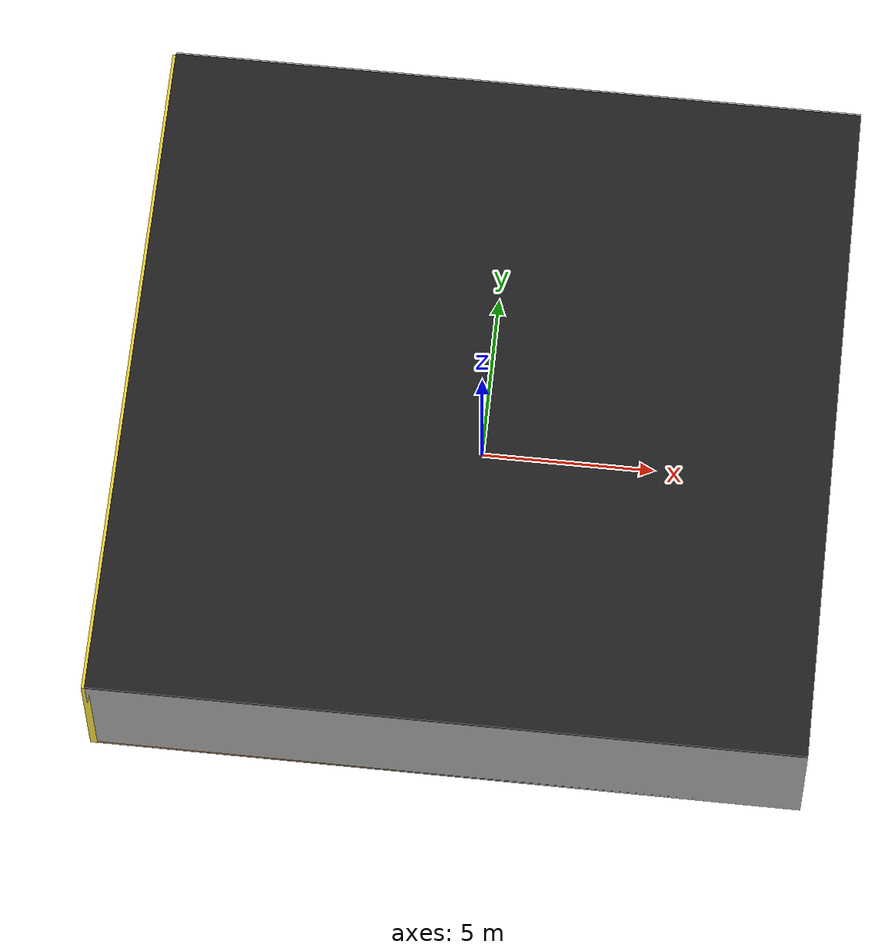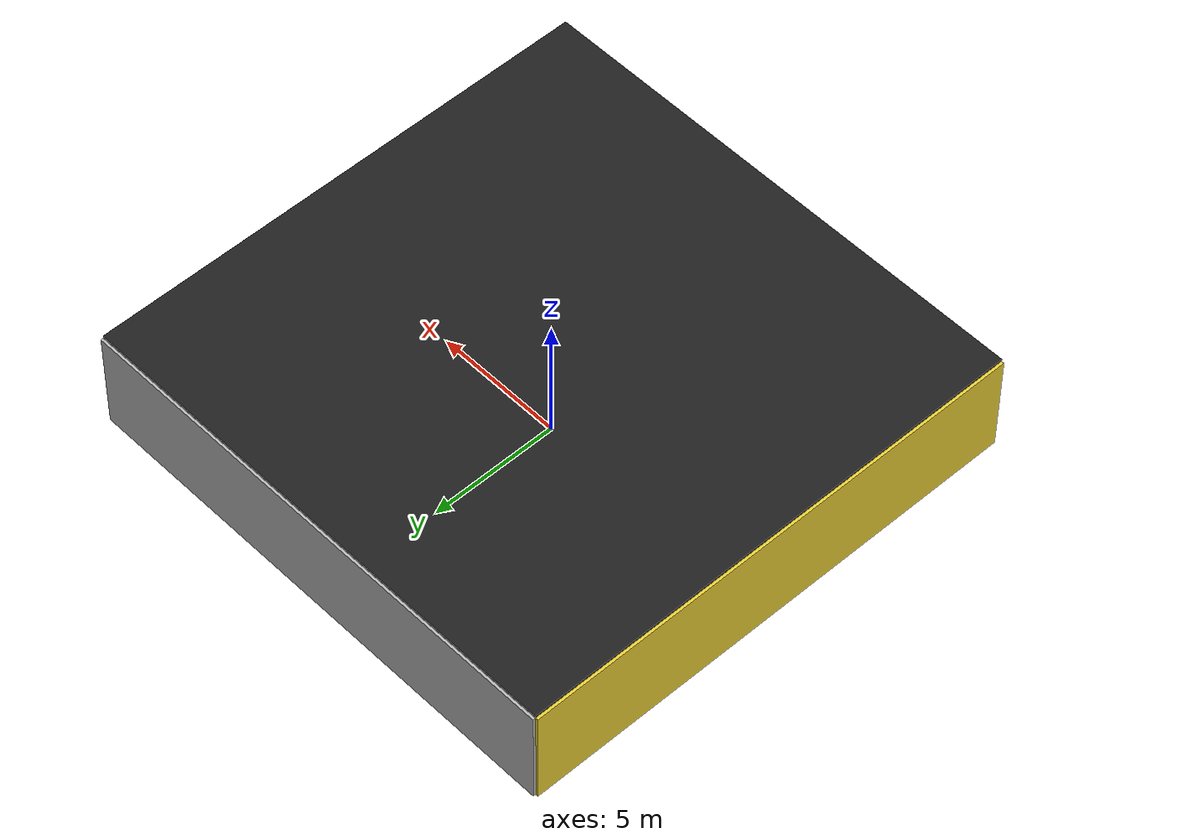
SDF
<sdf version="1.4">
 <world name="default">
  <physics type="ode">
   <max_step_size>0.001</max_step_size>
   <real_time_factor>1</real_time_factor>
   <real_time_update_rate>1000</real_time_update_rate>
   <gravity>0 0 -9.8</gravity>
  </physics>
  <scene><ambient>0.4 0.4 0.4 1</ambient><background>0.7 0.7 0.7 1</background><shadows>1</shadows></scene>
  <model name="Surrounding">
   <static>1</static>
   <link name="Ceiling">
    <collision name="Ceiling_Collision"><geometry><box><size>20 20 0.1</size></box></geometry></collision>
    <visual name="Ceiling_Visual">
     <geometry><box><size>20 20 0.1</size></box></geometry>
     <material>
      <script><uri>file://media/materials/scripts/gazebo.material</uri><name>Gazebo/Black</name></script>
     </material>
    </visual>
    <pose>0 0 4.05 0 0 0</pose>
   </link>
   <link name="Wall_South">
    <collision name="Wall_South_Collision">
     <geometry><box><size>20 0 4</size></box></geometry>
     <pose>0 0 2 0 -0 0</pose>
    </collision>
    <visual name="Wall_South_Visual">
     <pose>0 0 2 0 -0 0</pose>
     <geometry><box><size>20 0 4</size></box></geometry>
     <material>
      <script><uri>file://media/materials/scripts/gazebo.material</uri><name>Gazebo/GreyGradientSky</name></script>
     </material>
    </visual>
    <velocity_decay><linear>0</linear><angular>0</angular></velocity_decay>
    <pose>0 -10 0 0 -0 0</pose>
   </link>
   <link name="Wall_East">
    <collision name="Wall_21_Collision">
     <geometry><box><size>20 0 4</size></box></geometry>
     <pose>0 0 2 0 -0 0</pose>
    </collision>
    <visual name="Wall_21_Visual">
     <pose>0 0 2 0 -0 0</pose>
     <geometry><box><size>20 0 4</size></box></geometry>
     <material>
      <script><uri>file://media/materials/scripts/gazebo.material</uri><name>Gazebo/WoodFloor</name></script>
     </material>
    </visual>
    <velocity_decay><linear>0</linear><angular>0</angular></velocity_decay>
    <pose>10 0 0 0 -0 1.5708</pose>
   </link>
   <link name="Wall_North">
    <collision name="Wall_22_Collision">
     <geometry><box><size>20 0.2 4</size></box></geometry>
     <pose>0 0 2 0 -0 0</pose>
    </collision>
    <visual name="Wall_22_Visual">
     <pose>0 0 2 0 -0 0</pose>
     <geometry><box><size>20 0.2 4</size></box></geometry>
     <material>
      <script><uri>file://media/materials/scripts/gazebo.material</uri><name>Gazebo/LightOn</name></script>
     </material>
    </visual>
    <velocity_decay><linear>0</linear><angular>0</angular></velocity_decay>
    <pose>0 10 0 0 -0 0</pose>
   </link>
   <link name="Wall_West">
    <collision name="Wall_23_Collision">
     <geometry><box><size>20 0.2 4</size></box></geometry>
     <pose>0 0 2 0 -0 0</pose>
    </collision>
    <visual name="Wall_23_Visual">
     <pose>0 0 2 0 -0 0</pose>
     <geometry><box><size>20 0.2 4</size></box></geometry>
     <material>
      <script><uri>file://media/materials/scripts/gazebo.material</uri><name>Gazebo/ZincYellow</name></script>
     </material>
    </visual>
    <velocity_decay><linear>0</linear><angular>0</angular></velocity_decay>
    <pose>-10 0 0 0 0 -1.5708</pose>
   </link>
   <link name="Ground_link">
    <collision name="collision">
     <pose>0 0 .05 0 -0 0</pose>
     <geometry><box><size>20 20 0.1</size></box></geometry>
    </collision>
    <visual name="visual">
     <pose>0 0 .05 0 -0 0</pose>
     <geometry><box><size>20 20 0.1</size></box></geometry>
     <material>
      <script><uri>file://media/materials/scripts/gazebo.material</uri><name>Gazebo/WoodFloor</name></script>
     </material>
    </visual>
   </link>
   <static>1</static>
  </model>
  <spherical_coordinates>
   <surface_model>EARTH_WGS84</surface_model>
   <latitude_deg>0</latitude_deg>
   <longitude_deg>0</longitude_deg>
   <elevation>0</elevation>
   <heading_deg>0</heading_deg>
  </spherical_coordinates>
  <light name="lightball_0" type="diffuse">
   <diffuse>0.8 0.8 0.8 1</diffuse>
   <specular>0.2 0.2 0.2 1</specular>
   <attenuation>
    <range>100</range>
    <constant>0.7</constant>
    <linear>0.01</linear>
    <quadratic>0.001</quadratic>
   </attenuation>
   <direction>-0.5 0.1 -0.9</direction>
   <pose>-1.72548113257 6.00730472352 2.30780056289 0 0 0</pose>
  </light>
  <light name="lightball_1" type="diffuse">
   <diffuse>0.8 0.8 0.8 1</diffuse>
   <specular>0.2 0.2 0.2 1</specular>
   <attenuation>
    <range>100</range>
    <constant>0.7</constant>
    <linear>0.01</linear>
    <quadratic>0.001</quadratic>
   </attenuation>
   <direction>-0.5 0.1 -0.9</direction>
   <pose>1.40425316793 0.546187672475 0.538301630112 0 0 0</pose>
  </light>
  <light name="lightball_2" type="diffuse">
   <diffuse>0.8 0.8 0.8 1</diffuse>
   <specular>0.2 0.2 0.2 1</specular>
   <attenuation>
    <range>100</range>
    <constant>0.7</constant>
    <linear>0.01</linear>
    <quadratic>0.001</quadratic>
   </attenuation>
   <direction>-0.5 0.1 -0.9</direction>
   <pose>8.94649678988 1.32724618945 1.67921402361 0 0 0</pose>
  </light>
  <light name="lightball_3" type="diffuse">
   <diffuse>0.8 0.8 0.8 1</diffuse>
   <specular>0.2 0.2 0.2 1</specular>
   <attenuation>
    <range>100</range>
    <constant>0.7</constant>
    <linear>0.01</linear>
    <quadratic>0.001</quadratic>
   </attenuation>
   <direction>-0.5 0.1 -0.9</direction>
   <pose>2.31608089348 -5.34118591308 0.997744226114 0 0 0</pose>
  </light>
  <light name="lightball_4" type="diffuse">
   <diffuse>0.8 0.8 0.8 1</diffuse>
   <specular>0.2 0.2 0.2 1</specular>
   <attenuation>
    <range>100</range>
    <constant>0.7</constant>
    <linear>0.01</linear>
    <quadratic>0.001</quadratic>
   </attenuation>
   <direction>-0.5 0.1 -0.9</direction>
   <pose>-6.0190133108 4.19837388256 2.95433041377 0 0 0</pose>
  </light>
  <light name="lightball_5" type="diffuse">
   <diffuse>0.8 0.8 0.8 1</diffuse>
   <specular>0.2 0.2 0.2 1</specular>
   <attenuation>
    <range>100</range>
    <constant>0.7</constant>
    <linear>0.01</linear>
    <quadratic>0.001</quadratic>
   </attenuation>
   <direction>-0.5 0.1 -0.9</direction>
   <pose>2.94484974967 8.49450096261 0.675881144134 0 0 0</pose>
  </light>
  <light name="lightball_6" type="diffuse">
   <diffuse>0.8 0.8 0.8 1</diffuse>
   <specular>0.2 0.2 0.2 1</specular>
   <attenuation>
    <range>100</range>
    <constant>0.7</constant>
    <linear>0.01</linear>
    <quadratic>0.001</quadratic>
   </attenuation>
   <direction>-0.5 0.1 -0.9</direction>
   <pose>7.51215887523 0.0157800231909 2.99654937363 0 0 0</pose>
  </light>
  <light name="lightball_7" type="diffuse">
   <diffuse>0.8 0.8 0.8 1</diffuse>
   <specular>0.2 0.2 0.2 1</specular>
   <attenuation>
    <range>100</range>
    <constant>0.7</constant>
    <linear>0.01</linear>
    <quadratic>0.001</quadratic>
   </attenuation>
   <direction>-0.5 0.1 -0.9</direction>
   <pose>5.32772336052 -6.43050891585 3.72612452257 0 0 0</pose>
  </light>
  <light name="lightball_8" type="diffuse">
   <diffuse>0.8 0.8 0.8 1</diffuse>
   <specular>0.2 0.2 0.2 1</specular>
   <attenuation>
    <range>100</range>
    <constant>0.7</constant>
    <linear>0.01</linear>
    <quadratic>0.001</quadratic>
   </attenuation>
   <direction>-0.5 0.1 -0.9</direction>
   <pose>1.6334830481 4.74651912767 1.88631805706 0 0 0</pose>
  </light>
  <include><uri>model://cabinet</uri><pose>-7.05536162517 -8.13554112201 0 0 0 0.490702064382</pose></include>
  <include><uri>model://cabinet</uri><pose>-5.28571301438 7.26055117381 0 0 0 2.56510499121</pose></include>
 </world>
</sdf>

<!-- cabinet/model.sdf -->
<sdf version="1.5">
  <model name="cabinet">
    <static>true</static>
    <link name="cabinet_bottom_plate">
      <inertial>
        <pose>0 0 -1 0 0 0</pose>
        <inertia>
          <ixx>2.050000</ixx>
          <ixy>0</ixy>
          <ixz>0</ixz>
          <iyy>2.050000</iyy>
          <iyz>0</iyz>
          <izz>2.050000</izz>
        </inertia>
        <mass>25.000000</mass>
      </inertial>
      <collision name="cabinet_bottom_plate_geom">
        <pose>0 0 0.010000 0 0 0</pose>
        <geometry>
          <box>
            <size>0.450000 0.450000 0.020000</size>
          </box>
        </geometry>
      </collision>
      <visual name="cabinet_bottom_plate_geom_visual">
        <pose>0 0 0.010000 0 0 0</pose>
        <geometry>
          <box>
            <size>0.450000 0.450000 0.020000</size>
          </box>
        </geometry>
        <material>
          <script>
            <uri>model://media/materials/scripts/gazebo.material</uri>
            <name>Gazebo/Wood</name>
          </script>
        </material>
      </visual>
      <collision name="cabinet_bottom_plate_geom_cabinet_back_plate">
        <pose>0.235000 0 0.510000 0 0 0</pose>
        <geometry>
          <box>
            <size>0.020000 0.450000 1.020000</size>
          </box>
        </geometry>
      </collision>
      <visual name="cabinet_bottom_plate_geom_cabinet_back_plate_visual">
        <pose>0.235000 0 0.510000 0 0 0</pose>
        <geometry>
          <box>
            <size>0.020000 0.450000 1.020000</size>
          </box>
        </geometry>
        <material>
          <script>
            <uri>model://media/materials/scripts/gazebo.material</uri>
            <name>Gazebo/Wood</name>
          </script>
        </material>
      </visual>
      <collision name="cabinet_bottom_plate_geom_cabinet_left_plate">
        <pose>0 0.235000 0.510000 0 0 0</pose>
        <geometry>
          <box>
            <size>0.450000 0.020000 1.020000</size>
          </box>
        </geometry>
      </collision>
      <visual name="cabinet_bottom_plate_geom_cabinet_left_plate_visual">
        <pose>0 0.235000 0.510000 0 0 0</pose>
        <geometry>
          <box>
            <size>0.450000 0.020000 1.020000</size>
          </box>
        </geometry>
        <material>
          <script>
            <uri>model://media/materials/scripts/gazebo.material</uri>
            <name>Gazebo/Wood</name>
          </script>
        </material>
      </visual>
      <collision name="cabinet_bottom_plate_geom_cabinet_middle_plate">
        <pose>0 0 0.510000 0 0 0</pose>
        <geometry>
          <box>
            <size>0.450000 0.450000 0.020000</size>
          </box>
        </geometry>
      </collision>
      <visual name="cabinet_bottom_plate_geom_cabinet_middle_plate_visual">
        <pose>0 0 0.510000 0 0 0</pose>
        <geometry>
          <box>
            <size>0.450000 0.450000 0.020000</size>
          </box>
        </geometry>
        <material>
          <script>
            <uri>model://media/materials/scripts/gazebo.material</uri>
            <name>Gazebo/Wood</name>
          </script>
        </material>
      </visual>
      <collision name="cabinet_bottom_plate_geom_cabinet_right_plate">
        <pose>0 -0.235000 0.510000 0 0 0</pose>
        <geometry>
          <box>
            <size>0.450000 0.020000 1.020000</size>
          </box>
        </geometry>
      </collision>
      <visual name="cabinet_bottom_plate_geom_cabinet_right_plate_visual">
        <pose>0 -0.235000 0.510000 0 0 0</pose>
        <geometry>
          <box>
            <size>0.450000 0.020000 1.020000</size>
          </box>
        </geometry>
        <material>
          <script>
            <uri>model://media/materials/scripts/gazebo.material</uri>
            <name>Gazebo/Wood</name>
          </script>
        </material>
      </visual>
      <collision name="cabinet_bottom_plate_geom_cabinet_top_plate">
        <pose>0 0 1.010000 0 0 0</pose>
        <geometry>
          <box>
            <size>0.450000 0.450000 0.020000</size>
          </box>
        </geometry>
      </collision>
      <visual name="cabinet_bottom_plate_geom_cabinet_top_plate_visual">
        <pose>0 0 1.010000 0 0 0</pose>
        <geometry>
          <box>
            <size>0.450000 0.450000 0.020000</size>
          </box>
        </geometry>
        <material>
          <script>
            <uri>model://media/materials/scripts/gazebo.material</uri>
            <name>Gazebo/Wood</name>
          </script>
        </material>
      </visual>
    </link>
  </model>
</sdf>
